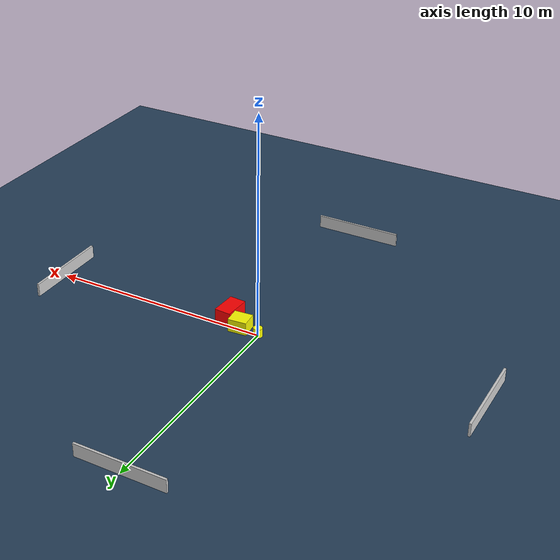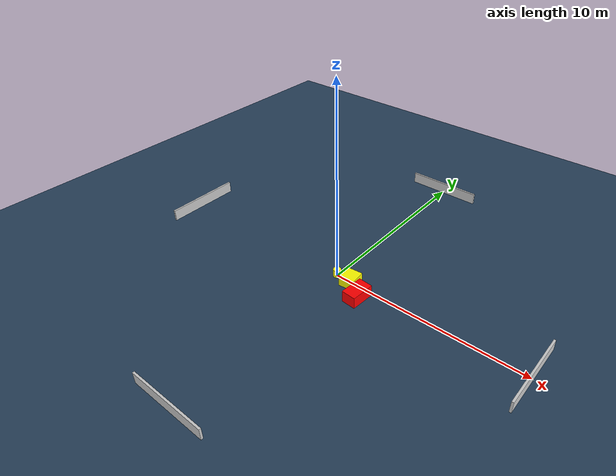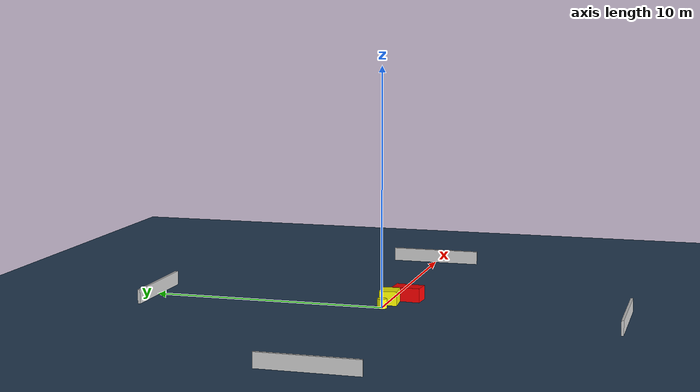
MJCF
<?xml version="1.0" ?>
<mujoco model="generated_environment">
  <option timestep="0.01" integrator="RK4" cone="elliptic"/>
  <default>
    <geom density="1"/>
  </default>
  <asset>
    <texture builtin="gradient" height="3072" name="skybox" rgb1="0.3 0.5 0.7" rgb2="0 0 0" type="skybox" width="512"/>
    <texture builtin="checker" height="300" name="groundplane" rgb1="0.2 0.3 0.4" rgb2="0.1 0.2 0.3" type="2d" width="300"/>
    <material name="groundplane" reflectance="0.2" texrepeat="5 5" texture="groundplane"/>
  </asset>
  <worldbody>
    <light dir="0 0 -1" directional="true" pos="0 0 1.5"/>
    <geom condim="3" friction="0.5 0.005 0.001" material="groundplane" name="floor" pos="0 0 0" size="0 0 0.05" type="plane"/>
    <body name="walls">
      <geom name="wall_1" condim="4" pos="-10.0 0.0 0.3" rgba="0.800000011920929 0.800000011920929 0.800000011920929 1.0" size="0.05 2.0 0.3" type="box"/>
      <geom name="wall_2" condim="4" pos="10.0 0.0 0.3" rgba="0.800000011920929 0.800000011920929 0.800000011920929 1.0" size="0.05 2.0 0.3" type="box"/>
      <geom name="wall_3" condim="4" pos="0.0 -10.0 0.3" rgba="0.800000011920929 0.800000011920929 0.800000011920929 1.0" size="2.0 0.05 0.3" type="box"/>
      <geom name="wall_4" condim="4" pos="0.0 10.0 0.3" rgba="0.800000011920929 0.800000011920929 0.800000011920929 1.0" size="2.0 0.05 0.3" type="box"/>
    </body>
    <body name="robot">
      <joint name="joint_x" type="slide" pos="0 0 0" axis="1 0 0"/>
      <joint name="joint_y" type="slide" pos="0 0 0" axis="0 1 0"/>
      <geom name="robot" type="cylinder" pos="0.0 0.0 0.2" size="0.2 0.2 0.0" mass="5.0" friction="1.0 0.005 0.0001" condim="4" rgba="1.0 1.0 0.0 1.0"/>
    </body>
    <body name="obstacle_1_movable">
      <geom name="obstacle_1_movable" condim="4" pos="0.8880567001981831 -0.08442171184502395 0.3" euler="0 0 275.03944113922705" friction="0.0 0.005 0.001" rgba="1.0 1.0 0.0 1.0" size="0.37393409881881146 0.4190242683839087 0.3" type="box" mass="0.1"/>
      <joint type="free"/>
    </body>
    <body name="obstacle_2_static">
      <geom name="obstacle_2_static" condim="4" pos="1.7325586338008199 -0.6803683323395429 0.3" euler="0 0 356.06261035365094" friction="0.0 0.005 0.001" rgba="1.0 0.0 0.0 1.0" size="0.37320901176023213 0.6051445487713389 0.3" type="box"/>
    </body>
  </worldbody>
  <actuator>
    <motor name="actuator_x" joint="joint_x" gear="1" ctrlrange="-1 1"/>
    <motor name="actuator_y" joint="joint_y" gear="1" ctrlrange="-1 1"/>
  </actuator>
</mujoco>
